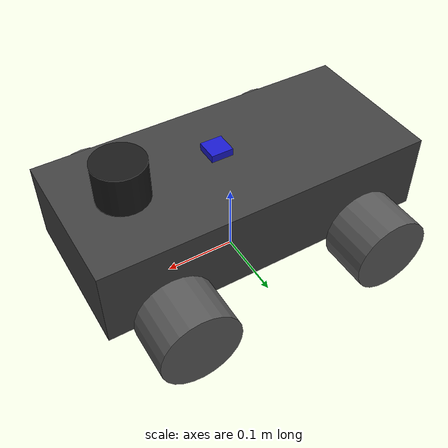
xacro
<?xml version="1.0"?>
<robot xmlns:xacro="http://www.ros.org/wiki/xacro" name="maverick_quantum_xt">

    <!-- ROBOT PROPERTIES -->
    <xacro:property name="body_mass" value="1.58" />
    <xacro:property name="body_length" value="0.460" />
    <xacro:property name="body_width" value="0.21" />
    <xacro:property name="body_height" value="0.110" />

    <xacro:property name="wheelbase" value="0.285" />
    <xacro:property name="track_width" value="0.280" />

    <xacro:property name="wheel_radius" value="0.055" />
    <xacro:property name="wheel_thickness" value="0.070" />
    <xacro:property name="wheel_mass" value="0.12" />
    <xacro:property name="steering_mass" value="0.02" />

    <!-- max steering = 45 deg -->
    <xacro:property name="max_steering_angle" value="${7*pi/36}" />

    <xacro:property name="lidar_radius" value="0.035" />
    <xacro:property name="lidar_height" value="0.055" />
    <xacro:property name="lidar_mass" value="0.05" />

    <!-- Derived properties -->
    <xacro:property name="half_body_length" value="${body_length / 2}" />
    <xacro:property name="half_body_height" value="${body_height / 2}" />

    <xacro:property name="half_track_width" value="${track_width / 2}" />
    <xacro:property name="front_axle_offset" value="${wheelbase / 2}" />
    <xacro:property name="rear_axle_offset" value="${-wheelbase / 2}" />

    <!-- BASE FOOTPRINT -->
    <link name="base_footprint">
    </link>

    <!-- BASE LINK -->
    <link name="base_link">
    </link>

    <joint name="base_joint" type="fixed">
        <parent link="base_footprint" />
        <child link="base_link" />
        <origin xyz="0.0 0.0 0.0" rpy="0 0 0" />
    </joint>

    <!-- CHASSIS LINK -->
    <link name="chassis_link">
        <inertial>
            <origin xyz="0.0 0.0 0.0" rpy="0 0 0" />
            <mass value="${body_mass}" />
            <inertia
                ixx="${body_mass/12 * (body_width*body_width + body_height*body_height)}"
                ixy="0" ixz="0"
                iyy="${body_mass/12 * (body_length*body_length + body_height*body_height)}"
                iyz="0"
                izz="${body_mass/12 * (body_length*body_length + body_width*body_width)}" />
        </inertial>

        <visual>
            <origin xyz="0 0 0" rpy="0 0 0" />
            <geometry>
                <box size="${body_length} ${body_width} ${body_height}" />
            </geometry>
            <material name="red">
                <color rgba="0.25 0.25 0.25 1.0"/>
            </material>
        </visual>

        <collision>
            <origin xyz="0 0 0" rpy="0 0 0" />
            <geometry>
                <box size="${body_length} ${body_width} ${body_height}" />
            </geometry>
        </collision>
    </link>

    <joint name="chassis_joint" type="fixed">
        <parent link="base_link" />
        <child link="chassis_link" />
        <!-- chassis center height so wheel centers end up at wheel_radius above ground -->
        <origin xyz=" 0.0 0.0 ${wheel_radius + body_height/2}" rpy="0 0 0" />
    </joint>

    <!-- FRONT LEFT STEERING LINK -->
    <link name="fr_left_steer_link">
        <inertial>
            <origin xyz="0 0 0" rpy="${pi/2} 0 0" />
            <mass value="${steering_mass}" />
            <inertia
                ixx="${steering_mass/12*(3*wheel_radius*wheel_radius + wheel_thickness*wheel_thickness)}"
                ixy="0" ixz="0"
                iyy="${steering_mass/12*(3*wheel_radius*wheel_radius + wheel_thickness*wheel_thickness)}"
                iyz="0"
                izz="${steering_mass/2 * wheel_radius*wheel_radius}" />
        </inertial>

        <!-- Simple visual so it shows in RViz/Gazebo -->
        <visual>
            <origin xyz="0 0 0" rpy="${pi/2} 0 0" />
            <geometry>
                <cylinder radius="0.01" length="0.03"/>
            </geometry>
            <material name="steer_red">
                <color rgba="0.8 0.1 0.1 1"/>
            </material>
        </visual>

        <collision>
            <origin xyz="0 0 0" rpy="${pi/2} 0 0" />
            <geometry>
                <cylinder radius="0.01" length="0.03"/>
            </geometry>
        </collision>

    </link>

    <joint name="fr_left_steer_joint" type="revolute">
        <parent link="chassis_link" />
        <child link="fr_left_steer_link" />
        <origin xyz="${front_axle_offset} ${half_track_width} ${-body_height/2}" rpy="0 0 0" />
        <axis xyz="0 0 1" />
        <limit upper="${max_steering_angle}" lower="${-max_steering_angle}" effort="10.0" velocity="2.0" />
        <dynamics damping="0.1" friction="0.1"/>
    </joint>

    <!-- FRONT LEFT WHEEL -->
    <link name="fr_left_wheel_link">
        <inertial>
            <origin xyz="0 0 0" rpy="${pi/2} 0 0" />
            <mass value="${wheel_mass}" />
            <inertia
                ixx="${wheel_mass/12*(3*wheel_radius*wheel_radius + wheel_thickness*wheel_thickness)}"
                ixy="0" ixz="0"
                iyy="${wheel_mass/12*(3*wheel_radius*wheel_radius + wheel_thickness*wheel_thickness)}"
                iyz="0"
                izz="${wheel_mass/2 * wheel_radius*wheel_radius}" />
        </inertial>

        <visual>
            <origin xyz="0 0 0" rpy="${pi/2} 0 0" />
            <geometry>
                <cylinder radius="${wheel_radius}" length="${wheel_thickness}" />
            </geometry>
            <material name="wheel_dark">
                <color rgba="0.35 0.35 0.35 1"/>
            </material>
        </visual>

        <collision>
            <origin xyz="0 0 0" rpy="${pi/2} 0 0" />
            <geometry>
                <cylinder radius="${wheel_radius}" length="${wheel_thickness}" />
            </geometry>
        </collision>
    </link>

    <joint name="fr_left_wheel_joint" type="continuous">
        <parent link="fr_left_steer_link" />
        <child link="fr_left_wheel_link" />
        <origin xyz="0 0 0" rpy="0 0 0" />
        <axis xyz="0 1 0" />
        <dynamics friction="0.1" damping="0.1" />
        <limit lower="-3.14159" upper="3.14159" effort="70" velocity="50" />
    </joint>

    <!-- FRONT RIGHT STEERING LINK -->
    <link name="fr_right_steer_link">
        <inertial>
            <origin xyz="0 0 0" rpy="${pi/2} 0 0" />
            <mass value="${steering_mass}" />
            <inertia
                ixx="${steering_mass/12*(3*wheel_radius*wheel_radius + wheel_thickness*wheel_thickness)}"
                ixy="0" ixz="0"
                iyy="${steering_mass/12*(3*wheel_radius*wheel_radius + wheel_thickness*wheel_thickness)}"
                iyz="0"
                izz="${steering_mass/2 * wheel_radius*wheel_radius}" />
        </inertial>

        <!-- Simple visual so it shows in RViz/Gazebo -->
        <visual>
            <origin xyz="0 0 0" rpy="${pi/2} 0 0" />
            <geometry>
                <cylinder radius="0.01" length="0.03"/>
            </geometry>
            <material name="steer_red2">
                <color rgba="0.8 0.1 0.1 1"/>
            </material>
        </visual>

        <collision>
            <origin xyz="0 0 0" rpy="${pi/2} 0 0" />
            <geometry>
                <cylinder radius="0.01" length="0.03"/>
            </geometry>
        </collision>

    </link>

    <joint name="fr_right_steer_joint" type="revolute">
        <parent link="chassis_link" />
        <child link="fr_right_steer_link" />
        <origin xyz="${front_axle_offset} ${-half_track_width} ${-body_height/2}" rpy="0 0 0" />
        <axis xyz="0 0 1" />
        <limit upper="${max_steering_angle}" lower="${-max_steering_angle}" effort="10.0" velocity="2.0" />
        <dynamics damping="0.1" friction="0.1"/>
    </joint>

    <!-- FRONT RIGHT WHEEL -->
    <link name="fr_right_wheel_link">
        <inertial>
            <origin xyz="0 0 0" rpy="${pi/2} 0 0" />
            <mass value="${wheel_mass}" />
            <inertia
                ixx="${wheel_mass/12*(3*wheel_radius*wheel_radius + wheel_thickness*wheel_thickness)}"
                ixy="0" ixz="0"
                iyy="${wheel_mass/12*(3*wheel_radius*wheel_radius + wheel_thickness*wheel_thickness)}"
                iyz="0"
                izz="${wheel_mass/2 * wheel_radius*wheel_radius}" />
        </inertial>

        <visual>
            <origin xyz="0 0 0" rpy="${pi/2} 0 0" />
            <geometry>
                <cylinder radius="${wheel_radius}" length="${wheel_thickness}" />
            </geometry>
            <material name="wheel_dark2">
                <color rgba="0.35 0.35 0.35 1"/>
            </material>
        </visual>

        <collision>
            <origin xyz="0 0 0" rpy="${pi/2} 0 0" />
            <geometry>
                <cylinder radius="${wheel_radius}" length="${wheel_thickness}" />
            </geometry>
        </collision>
    </link>

    <joint name="fr_right_wheel_joint" type="continuous">
        <parent link="fr_right_steer_link" />
        <child link="fr_right_wheel_link" />
        <origin xyz="0 0 0" rpy="0 0 0" />
        <axis xyz="0 1 0" />
        <dynamics friction="0.1" damping="0.1" />
        <limit lower="-3.14159" upper="3.14159" effort="70" velocity="50" />
    </joint>

    <!-- REAR LEFT WHEEL -->
    <link name="re_left_wheel_link">
        <inertial>
            <origin xyz="0 0 0" rpy="${pi/2} 0 0" />
            <mass value="${wheel_mass}" />
            <inertia
                ixx="${wheel_mass/12*(3*wheel_radius*wheel_radius + wheel_thickness*wheel_thickness)}"
                ixy="0" ixz="0"
                iyy="${wheel_mass/12*(3*wheel_radius*wheel_radius + wheel_thickness*wheel_thickness)}"
                iyz="0"
                izz="${wheel_mass/2 * wheel_radius*wheel_radius}" />
        </inertial>

        <visual>
            <origin xyz="0 0 0" rpy="${pi/2} 0 0" />
            <geometry>
                <cylinder radius="${wheel_radius}" length="${wheel_thickness}" />
            </geometry>
            <material name="wheel_dark3">
                <color rgba="0.35 0.35 0.35 1"/>
            </material>
        </visual>

        <collision>
            <origin xyz="0 0 0" rpy="${pi/2} 0 0" />
            <geometry>
                <cylinder radius="${wheel_radius}" length="${wheel_thickness}" />
            </geometry>
        </collision>
    </link>

    <joint name="re_left_wheel_joint" type="continuous">
        <parent link="chassis_link" />
        <child link="re_left_wheel_link" />
        <origin xyz="${rear_axle_offset} ${half_track_width} ${-body_height/2}" rpy="0 0 0" />
        <axis xyz="0 1 0" />
        <dynamics friction="0.1" damping="0.1" />
        <limit lower="-3.14159" upper="3.14159" effort="70" velocity="50" />
    </joint>

    <!-- REAR RIGHT WHEEL -->
    <link name="re_right_wheel_link">
        <inertial>
            <origin xyz="0 0 0" rpy="${pi/2} 0 0" />
            <mass value="${wheel_mass}" />
            <inertia
                ixx="${wheel_mass/12*(3*wheel_radius*wheel_radius + wheel_thickness*wheel_thickness)}"
                ixy="0" ixz="0"
                iyy="${wheel_mass/12*(3*wheel_radius*wheel_radius + wheel_thickness*wheel_thickness)}"
                iyz="0"
                izz="${wheel_mass/2 * wheel_radius*wheel_radius}" />
        </inertial>

        <visual>
            <origin xyz="0 0 0" rpy="${pi/2} 0 0" />
            <geometry>
                <cylinder radius="${wheel_radius}" length="${wheel_thickness}" />
            </geometry>
            <material name="wheel_dark4">
                <color rgba="0.35 0.35 0.35 1"/>
            </material>
        </visual>

        <collision>
            <origin xyz="0 0 0" rpy="${pi/2} 0 0" />
            <geometry>
                <cylinder radius="${wheel_radius}" length="${wheel_thickness}" />
            </geometry>
        </collision>
    </link>

    <joint name="re_right_wheel_joint" type="continuous">
        <parent link="chassis_link" />
        <child link="re_right_wheel_link" />
        <origin xyz="${rear_axle_offset} ${-half_track_width} ${-body_height/2}" rpy="0 0 0" />
        <axis xyz="0 1 0" />
        <dynamics friction="0.1" damping="0.1" />
        <limit lower="-3.14159" upper="3.14159" effort="70" velocity="50" />
    </joint>

    <!-- LIDAR LINK -->
    <link name="laser">
        <inertial>
            <origin xyz="0 0 0" rpy="0 0 0" />
            <mass value="${lidar_mass}" />
            <inertia
                ixx="${lidar_mass/12*(3*lidar_radius*lidar_radius + lidar_height*lidar_height)}"
                ixy="0" ixz="0"
                iyy="${lidar_mass/12*(3*lidar_radius*lidar_radius + lidar_height*lidar_height)}"
                iyz="0"
                izz="${lidar_mass/2 * lidar_radius*lidar_radius}" />
        </inertial>

        <visual>
            <origin xyz="0 0 0" rpy="0 0 0" />
            <geometry>
                <cylinder radius="${lidar_radius}" length="${lidar_height}" />
            </geometry>
            <material name="lidar_black">
                <color rgba="0.1 0.1 0.1 1" />
            </material>
        </visual>

        <collision>
            <origin xyz="0 0 0" rpy="0 0 0" />
            <geometry>
                <cylinder radius="${lidar_radius}" length="${lidar_height}" />
            </geometry>
        </collision>
    </link>

    <joint name="laser_joint" type="fixed">
        <parent link="chassis_link" />
        <child link="laser" />
        <!-- LiDAR at front edge + its radius, sitting on top surface -->
        <origin xyz=" 0.15 0.0 ${body_height/2 + lidar_height/2}" rpy="0 0 0" />
    </joint>

    <!-- IMU LINK -->

    <link name="imu_link">
        <visual>
            <origin xyz="0 0 0" rpy="0 0 0" />
            <geometry>
                <box size ="0.03 0.03 0.01" />
            </geometry>
            <material name="imu_blue">
                <color rgba="0.1 0.1 0.8 1.0" />
            </material>
        </visual>

        <collision>
            <origin xyz="0 0 0" rpy="0 0 0" />
            <geometry>
                <box size ="0.03 0.03 0.01" />
            </geometry>
        </collision>
    </link>

    <joint name="imu_joint" type="fixed">
        <parent link="chassis_link" />
        <child link="imu_link" />
        <!-- IMU fixed at center of chassis link-->
        <origin xyz=" 0.02 0 ${(body_height/2)+0.0175}" rpy="0 0 0" />
    </joint>

</robot>
